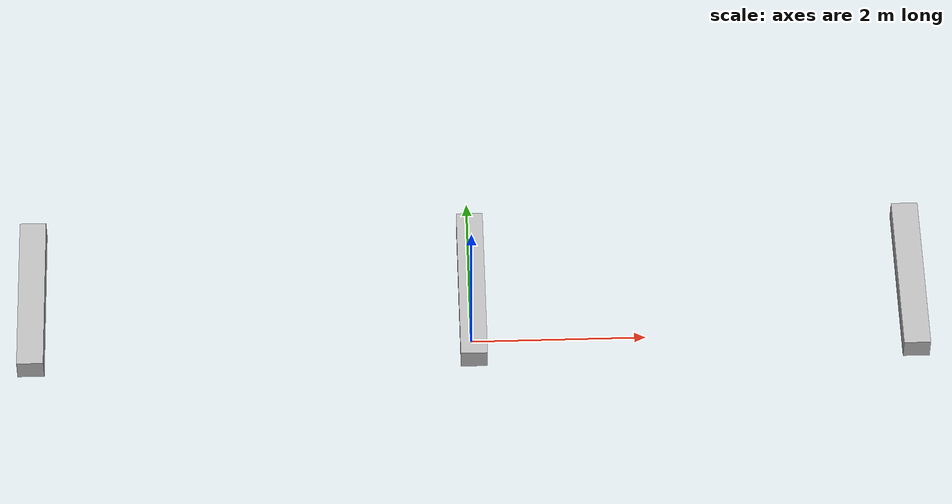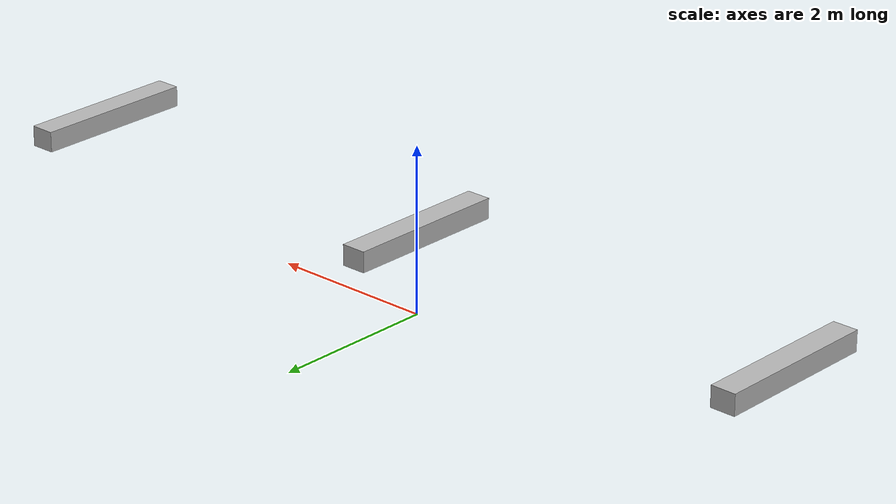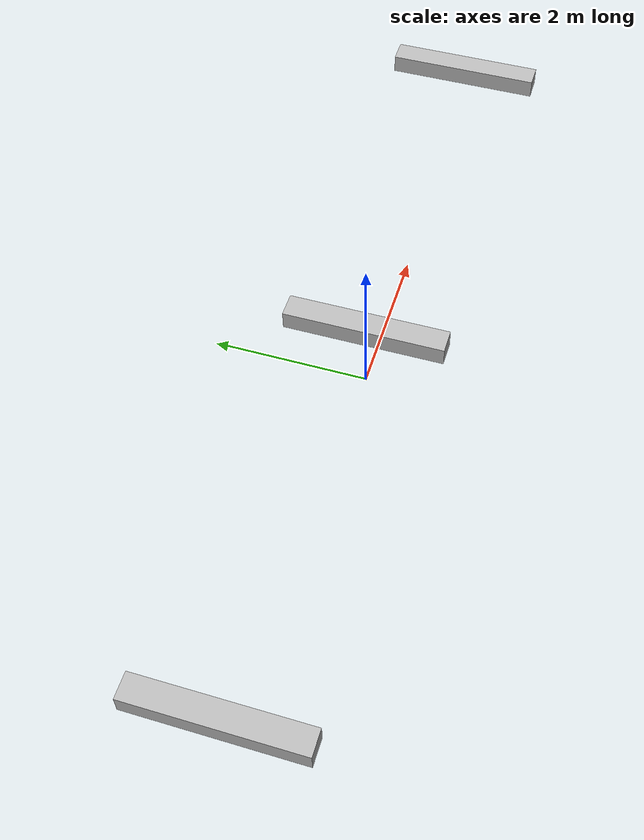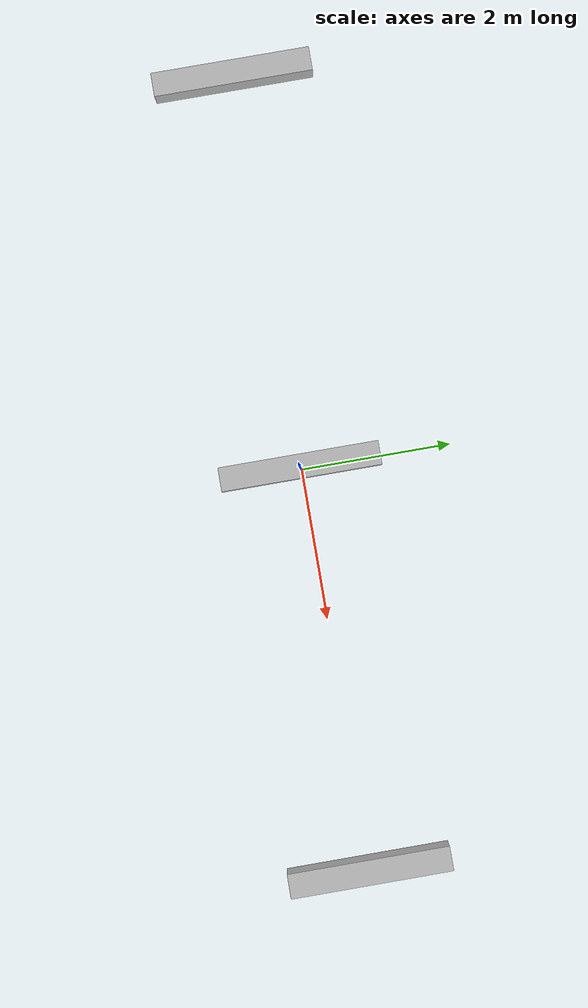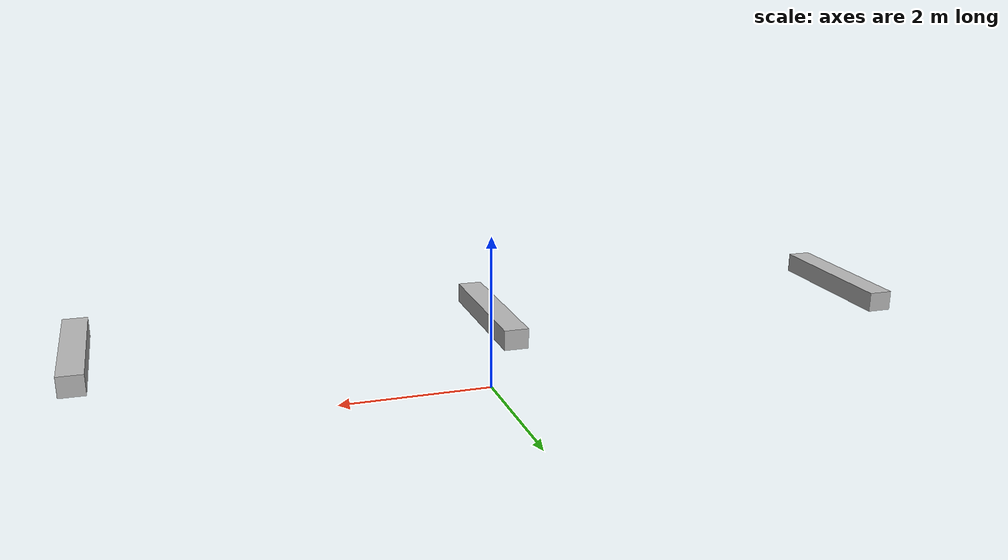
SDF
<?xml version="1.0"?>
<sdf version="1.6">
  <world name="multi_lrauv">
    <physics name="1ms" type="ode">
      <max_step_size>0.001</max_step_size>
      <real_time_factor>1.0</real_time_factor>
    </physics>
    <plugin filename="gz-sim-physics-system"
            name="gz::sim::systems::Physics">
    </plugin>
    <gravity>0 0 0</gravity>
    <model name="tethys">
      <pose>0 0 1 0 0 1.57</pose>
      <link name="base_link">
        <inertial>
          <mass>147.8671</mass>
          <inertia>
            <ixx>3.000000</ixx>
            <ixy>0</ixy>
            <ixz>0</ixz>
            <iyy>41.980233</iyy>
            <iyz>0</iyz>
            <izz>41.980233</izz>
          </inertia>
        </inertial>
        <collision name="main_body_buoyancy">
          <geometry>
            <box>
              <size>2 0.3 0.246445166667</size>
            </box>
          </geometry>
        </collision>
        <visual name='body_visual'>
          <geometry>
            <box>
              <size>2 0.3 0.246445166667</size>
            </box>
          </geometry>
        </visual>
      </link>
      <!-- Horizontal fins -->
      <link name="horizontal_fins">
        <pose>1.05 0 0 0 0 0</pose>
        <inertial>
          <pose>0 0 0 1.57 0 0.5</pose>
          <mass>0.2</mass>
          <inertia>
            <ixx>0.0007924568755</ixx>
            <ixy>-0.0000000002674</ixy>
            <ixz>0.0003978158176</ixz>
            <iyy>0.0010546736475</iyy>
            <iyz>-0.0000000006729</iyz>
            <izz>0.0002633558262</izz>
          </inertia>
        </inertial>
        <collision name="collision">
          <geometry>
            <box>
              <size>0.1 0.1 0.02</size>
            </box>
          </geometry>
        </collision>
      </link>
      <!-- Vertical fins -->
      <link name="vertical_fins">
        <pose>1.05 0 0 0 0 0</pose>
        <inertial>
          <mass>0.2</mass>
          <inertia>
            <ixx>0.0007924568755</ixx>
            <ixy>-0.0000000002674</ixy>
            <ixz>0.0003978158176</ixz>
            <iyy>0.0010546736475</iyy>
            <iyz>-0.0000000006729</iyz>
            <izz>0.0002633558262</izz>
          </inertia>
        </inertial>
        <collision name="collision">
          <geometry>
            <box>
              <size>0.1 0.1 0.02</size>
            </box>
          </geometry>
        </collision>
      </link>
      <!-- Joints -->
      <joint name="horizontal_fins_joint" type="revolute">
        <pose>0 0 0 0 0 0</pose>
        <parent>base_link</parent>
        <child>horizontal_fins</child>
        <axis>
          <xyz>0 1 0</xyz>
          <limit>
            <lower>-0.261799</lower>
            <upper>0.261799</upper>
            <effort>-1</effort>
            <velocity>-1</velocity>
          </limit>
        </axis>
      </joint>
      <plugin filename="gz-sim-hydrodynamics-system"
              name="gz::sim::systems::Hydrodynamics">
        <link_name>base_link</link_name>
        <xDotU>-4.876161</xDotU>
        <yDotV>-126.324739</yDotV>
        <zDotW>-126.324739</zDotW>
        <kDotP>0</kDotP>
        <mDotQ>-33.46</mDotQ>
        <nDotR>-33.46</nDotR>
        <xUabsU>-6.2282</xUabsU>
        <xU>0</xU>
        <yVabsV>-601.27</yVabsV>
        <yV>0</yV>
        <zWabsW>-601.27</zWabsW>
        <zW>0</zW>
        <kPabsP>-0.1916</kPabsP>
        <kP>0</kP>
        <mQabsQ>-632.698957</mQabsQ>
        <mQ>0</mQ>
        <nRabsR>-632.698957</nRabsR>
        <nR>0</nR>
        <disable_added_mass>true</disable_added_mass>
        <disable_coriolis>true</disable_coriolis>
      </plugin>
    </model>

    <model name="triton">
      <pose>5 0 1 0 0 1.57</pose>
      <link name="base_link">
        <inertial>
          <mass>147.8671</mass>
          <inertia>
            <ixx>3.000000</ixx>
            <ixy>0</ixy>
            <ixz>0</ixz>
            <iyy>41.980233</iyy>
            <iyz>0</iyz>
            <izz>41.980233</izz>
          </inertia>
        </inertial>
        <collision name="main_body_buoyancy">
          <geometry>
            <box>
              <size>2 0.3 0.246445166667</size>
            </box>
          </geometry>
        </collision>
        <visual name='body_visual'>
          <geometry>
            <box>
              <size>2 0.3 0.246445166667</size>
            </box>
          </geometry>
        </visual>
      </link>
      <!-- Horizontal fins -->
      <link name="horizontal_fins">
        <pose>1.05 0 0 0 0 0</pose>
        <inertial>
          <pose>0 0 0 1.57 0 0.5</pose>
          <mass>0.2</mass>
          <inertia>
            <ixx>0.0007924568755</ixx>
            <ixy>-0.0000000002674</ixy>
            <ixz>0.0003978158176</ixz>
            <iyy>0.0010546736475</iyy>
            <iyz>-0.0000000006729</iyz>
            <izz>0.0002633558262</izz>
          </inertia>
        </inertial>
        <collision name="collision">
          <geometry>
            <box>
              <size>0.1 0.1 0.02</size>
            </box>
          </geometry>
        </collision>
      </link>
      <!-- Vertical fins -->
      <link name="vertical_fins">
        <pose>1.05 0 0 0 0 0</pose>
        <inertial>
          <mass>0.2</mass>
          <inertia>
            <ixx>0.0007924568755</ixx>
            <ixy>-0.0000000002674</ixy>
            <ixz>0.0003978158176</ixz>
            <iyy>0.0010546736475</iyy>
            <iyz>-0.0000000006729</iyz>
            <izz>0.0002633558262</izz>
          </inertia>
        </inertial>
        <collision name="collision">
          <geometry>
            <box>
              <size>0.1 0.1 0.02</size>
            </box>
          </geometry>
        </collision>
      </link>
      <!-- Joints -->
      <joint name="horizontal_fins_joint" type="revolute">
        <pose>0 0 0 0 0 0</pose>
        <parent>base_link</parent>
        <child>horizontal_fins</child>
        <axis>
          <xyz>0 1 0</xyz>
          <limit>
            <lower>-0.261799</lower>
            <upper>0.261799</upper>
            <effort>-1</effort>
            <velocity>-1</velocity>
          </limit>
        </axis>
      </joint>
      <plugin filename="gz-sim-hydrodynamics-system"
              name="gz::sim::systems::Hydrodynamics">
        <link_name>base_link</link_name>
        <xDotU>-4.876161</xDotU>
        <yDotV>-126.324739</yDotV>
        <zDotW>-126.324739</zDotW>
        <kDotP>0</kDotP>
        <mDotQ>-33.46</mDotQ>
        <nDotR>-33.46</nDotR>
        <xUabsU>-6.2282</xUabsU>
        <xU>0</xU>
        <yVabsV>-601.27</yVabsV>
        <yV>0</yV>
        <zWabsW>-601.27</zWabsW>
        <zW>0</zW>
        <kPabsP>-0.1916</kPabsP>
        <kP>0</kP>
        <mQabsQ>-632.698957</mQabsQ>
        <mQ>0</mQ>
        <nRabsR>-632.698957</nRabsR>
        <nR>0</nR>
        <disable_added_mass>true</disable_added_mass>
      </plugin>
    </model>

    <model name="daphne">
      <pose>-5 0 1 0 0 1.57</pose>
      <link name="base_link">
        <inertial>
          <mass>147.8671</mass>
          <inertia>
            <ixx>3.000000</ixx>
            <ixy>0</ixy>
            <ixz>0</ixz>
            <iyy>41.980233</iyy>
            <iyz>0</iyz>
            <izz>41.980233</izz>
          </inertia>
        </inertial>
        <collision name="main_body_buoyancy">
          <geometry>
            <box>
              <size>2 0.3 0.246445166667</size>
            </box>
          </geometry>
        </collision>
        <visual name='body_visual'>
          <geometry>
            <box>
              <size>2 0.3 0.246445166667</size>
            </box>
          </geometry>
        </visual>
      </link>
      <!-- Horizontal fins -->
      <link name="horizontal_fins">
        <pose>1.05 0 0 0 0 0</pose>
        <inertial>
          <pose>0 0 0 1.57 0 0.5</pose>
          <mass>0.2</mass>
          <inertia>
            <ixx>0.0007924568755</ixx>
            <ixy>-0.0000000002674</ixy>
            <ixz>0.0003978158176</ixz>
            <iyy>0.0010546736475</iyy>
            <iyz>-0.0000000006729</iyz>
            <izz>0.0002633558262</izz>
          </inertia>
        </inertial>
        <collision name="collision">
          <geometry>
            <box>
              <size>0.1 0.1 0.02</size>
            </box>
          </geometry>
        </collision>
      </link>
      <!-- Vertical fins -->
      <link name="vertical_fins">
        <pose>1.05 0 0 0 0 0</pose>
        <inertial>
          <mass>0.2</mass>
          <inertia>
            <ixx>0.0007924568755</ixx>
            <ixy>-0.0000000002674</ixy>
            <ixz>0.0003978158176</ixz>
            <iyy>0.0010546736475</iyy>
            <iyz>-0.0000000006729</iyz>
            <izz>0.0002633558262</izz>
          </inertia>
        </inertial>
        <collision name="collision">
          <geometry>
            <box>
              <size>0.1 0.1 0.02</size>
            </box>
          </geometry>
        </collision>
      </link>
      <!-- Joints -->
      <joint name="horizontal_fins_joint" type="revolute">
        <pose>0 0 0 0 0 0</pose>
        <parent>base_link</parent>
        <child>horizontal_fins</child>
        <axis>
          <xyz>0 1 0</xyz>
          <limit>
            <lower>-0.261799</lower>
            <upper>0.261799</upper>
            <effort>-1</effort>
            <velocity>-1</velocity>
          </limit>
        </axis>
      </joint>
      <plugin filename="gz-sim-hydrodynamics-system"
              name="gz::sim::systems::Hydrodynamics">
        <link_name>base_link</link_name>
        <xDotU>-4.876161</xDotU>
        <yDotV>-126.324739</yDotV>
        <zDotW>-126.324739</zDotW>
        <kDotP>0</kDotP>
        <mDotQ>-33.46</mDotQ>
        <nDotR>-33.46</nDotR>
        <xUabsU>-6.2282</xUabsU>
        <xU>0</xU>
        <yVabsV>-601.27</yVabsV>
        <yV>0</yV>
        <zWabsW>-601.27</zWabsW>
        <zW>0</zW>
        <kPabsP>-0.1916</kPabsP>
        <kP>0</kP>
        <mQabsQ>-632.698957</mQabsQ>
        <mQ>0</mQ>
        <nRabsR>-632.698957</nRabsR>
        <nR>0</nR>
        <disable_coriolis>true</disable_coriolis>
      </plugin>
    </model>
  </world>
</sdf>
